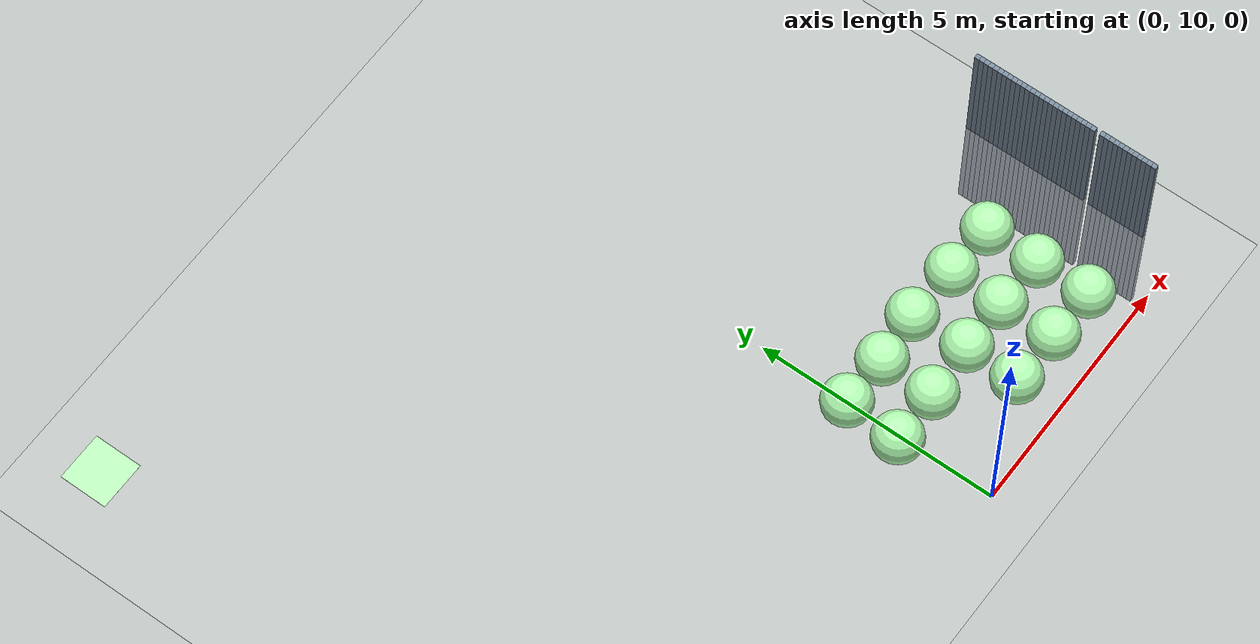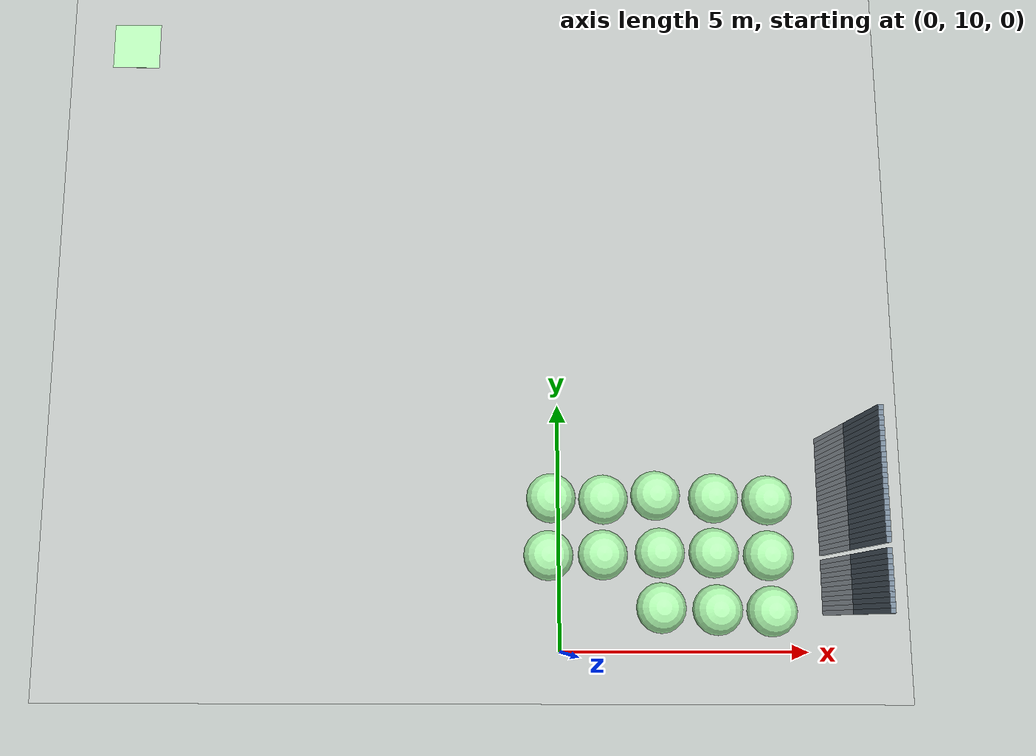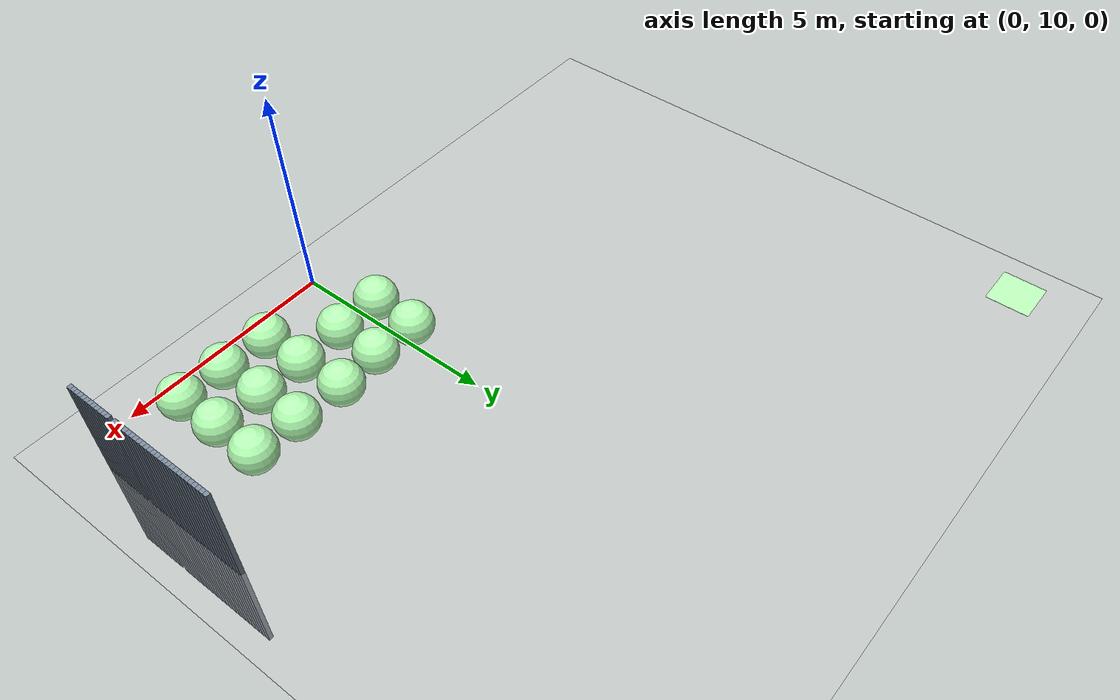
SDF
<sdf version="1.6">
 <world name="default">
  <model name="ground_plane">
   <static>1</static>
   <link name="link">
    <collision name="collision">
     <geometry><plane><normal>0 0 1</normal><size>100 100</size></plane></geometry>
     <surface><friction><ode><mu>100</mu><mu2>50</mu2></ode></friction></surface>
    </collision>
    <visual name="visual">
     <cast_shadows>0</cast_shadows>
     <geometry><plane><normal>0 0 1</normal><size>100 100</size></plane></geometry>
     <material>
      <script><uri>file://media/materials/scripts/gazebo.material</uri><name>Gazebo/Grey</name></script>
     </material>
    </visual>
   </link>
  </model>
  <model name="unit_cylinder_289">
   <static>1</static>
   <pose>6 10.8 0 0 -0 0</pose>
   <link name="link">
    <inertial>
     <mass>1</mass>
     <inertia><ixx>0.145833</ixx><ixy>0</ixy><ixz>0</ixz><iyy>0.145833</iyy><iyz>0</iyz><izz>0.125</izz></inertia>
    </inertial>
    <collision name="collision"><geometry><box><size>0.1 0.1 5</size></box></geometry></collision>
    <visual name="visual">
     <geometry><box><size>0.1 0.1 5</size></box></geometry>
     <material><ambient>0.466667 0.533333 0.6 1</ambient><diffuse>0.466667 0.533333 0.6 1</diffuse></material>
     <material>
      <script><name>Gazebo/Grey</name><uri>file://media/materials/scripts/gazebo.material</uri></script>
     </material>
    </visual>
   </link>
  </model>
  <model name="unit_cylinder_290">
   <static>1</static>
   <pose>6 10.9 0 0 -0 0</pose>
   <link name="link">
    <inertial>
     <mass>1</mass>
     <inertia><ixx>0.145833</ixx><ixy>0</ixy><ixz>0</ixz><iyy>0.145833</iyy><iyz>0</iyz><izz>0.125</izz></inertia>
    </inertial>
    <collision name="collision"><geometry><box><size>0.1 0.1 5</size></box></geometry></collision>
    <visual name="visual">
     <geometry><box><size>0.1 0.1 5</size></box></geometry>
     <material><ambient>0.466667 0.533333 0.6 1</ambient><diffuse>0.466667 0.533333 0.6 1</diffuse></material>
     <material>
      <script><name>Gazebo/Grey</name><uri>file://media/materials/scripts/gazebo.material</uri></script>
     </material>
    </visual>
   </link>
  </model>
  <model name="unit_cylinder_291">
   <static>1</static>
   <pose>6 11 0 0 -0 0</pose>
   <link name="link">
    <inertial>
     <mass>1</mass>
     <inertia><ixx>0.145833</ixx><ixy>0</ixy><ixz>0</ixz><iyy>0.145833</iyy><iyz>0</iyz><izz>0.125</izz></inertia>
    </inertial>
    <collision name="collision"><geometry><box><size>0.1 0.1 5</size></box></geometry></collision>
    <visual name="visual">
     <geometry><box><size>0.1 0.1 5</size></box></geometry>
     <material><ambient>0.466667 0.533333 0.6 1</ambient><diffuse>0.466667 0.533333 0.6 1</diffuse></material>
     <material>
      <script><name>Gazebo/Grey</name><uri>file://media/materials/scripts/gazebo.material</uri></script>
     </material>
    </visual>
   </link>
  </model>
  <model name="unit_cylinder_292">
   <static>1</static>
   <pose>6 11.1 0 0 -0 0</pose>
   <link name="link">
    <inertial>
     <mass>1</mass>
     <inertia><ixx>0.145833</ixx><ixy>0</ixy><ixz>0</ixz><iyy>0.145833</iyy><iyz>0</iyz><izz>0.125</izz></inertia>
    </inertial>
    <collision name="collision"><geometry><box><size>0.1 0.1 5</size></box></geometry></collision>
    <visual name="visual">
     <geometry><box><size>0.1 0.1 5</size></box></geometry>
     <material><ambient>0.466667 0.533333 0.6 1</ambient><diffuse>0.466667 0.533333 0.6 1</diffuse></material>
     <material>
      <script><name>Gazebo/Grey</name><uri>file://media/materials/scripts/gazebo.material</uri></script>
     </material>
    </visual>
   </link>
  </model>
  <model name="unit_cylinder_293">
   <static>1</static>
   <pose>6 11.2 0 0 -0 0</pose>
   <link name="link">
    <inertial>
     <mass>1</mass>
     <inertia><ixx>0.145833</ixx><ixy>0</ixy><ixz>0</ixz><iyy>0.145833</iyy><iyz>0</iyz><izz>0.125</izz></inertia>
    </inertial>
    <collision name="collision"><geometry><box><size>0.1 0.1 5</size></box></geometry></collision>
    <visual name="visual">
     <geometry><box><size>0.1 0.1 5</size></box></geometry>
     <material><ambient>0.466667 0.533333 0.6 1</ambient><diffuse>0.466667 0.533333 0.6 1</diffuse></material>
     <material>
      <script><name>Gazebo/Grey</name><uri>file://media/materials/scripts/gazebo.material</uri></script>
     </material>
    </visual>
   </link>
  </model>
  <model name="unit_cylinder_294">
   <static>1</static>
   <pose>6 11.3 0 0 -0 0</pose>
   <link name="link">
    <inertial>
     <mass>1</mass>
     <inertia><ixx>0.145833</ixx><ixy>0</ixy><ixz>0</ixz><iyy>0.145833</iyy><iyz>0</iyz><izz>0.125</izz></inertia>
    </inertial>
    <collision name="collision"><geometry><box><size>0.1 0.1 5</size></box></geometry></collision>
    <visual name="visual">
     <geometry><box><size>0.1 0.1 5</size></box></geometry>
     <material><ambient>0.466667 0.533333 0.6 1</ambient><diffuse>0.466667 0.533333 0.6 1</diffuse></material>
     <material>
      <script><name>Gazebo/Grey</name><uri>file://media/materials/scripts/gazebo.material</uri></script>
     </material>
    </visual>
   </link>
  </model>
  <model name="unit_cylinder_295">
   <static>1</static>
   <pose>6 11.4 0 0 -0 0</pose>
   <link name="link">
    <inertial>
     <mass>1</mass>
     <inertia><ixx>0.145833</ixx><ixy>0</ixy><ixz>0</ixz><iyy>0.145833</iyy><iyz>0</iyz><izz>0.125</izz></inertia>
    </inertial>
    <collision name="collision"><geometry><box><size>0.1 0.1 5</size></box></geometry></collision>
    <visual name="visual">
     <geometry><box><size>0.1 0.1 5</size></box></geometry>
     <material><ambient>0.466667 0.533333 0.6 1</ambient><diffuse>0.466667 0.533333 0.6 1</diffuse></material>
     <material>
      <script><name>Gazebo/Grey</name><uri>file://media/materials/scripts/gazebo.material</uri></script>
     </material>
    </visual>
   </link>
  </model>
  <model name="unit_cylinder_296">
   <static>1</static>
   <pose>6 11.5 0 0 -0 0</pose>
   <link name="link">
    <inertial>
     <mass>1</mass>
     <inertia><ixx>0.145833</ixx><ixy>0</ixy><ixz>0</ixz><iyy>0.145833</iyy><iyz>0</iyz><izz>0.125</izz></inertia>
    </inertial>
    <collision name="collision"><geometry><box><size>0.1 0.1 5</size></box></geometry></collision>
    <visual name="visual">
     <geometry><box><size>0.1 0.1 5</size></box></geometry>
     <material><ambient>0.466667 0.533333 0.6 1</ambient><diffuse>0.466667 0.533333 0.6 1</diffuse></material>
     <material>
      <script><name>Gazebo/Grey</name><uri>file://media/materials/scripts/gazebo.material</uri></script>
     </material>
    </visual>
   </link>
  </model>
  <model name="unit_cylinder_297">
   <static>1</static>
   <pose>6 11.6 0 0 -0 0</pose>
   <link name="link">
    <inertial>
     <mass>1</mass>
     <inertia><ixx>0.145833</ixx><ixy>0</ixy><ixz>0</ixz><iyy>0.145833</iyy><iyz>0</iyz><izz>0.125</izz></inertia>
    </inertial>
    <collision name="collision"><geometry><box><size>0.1 0.1 5</size></box></geometry></collision>
    <visual name="visual">
     <geometry><box><size>0.1 0.1 5</size></box></geometry>
     <material><ambient>0.466667 0.533333 0.6 1</ambient><diffuse>0.466667 0.533333 0.6 1</diffuse></material>
     <material>
      <script><name>Gazebo/Grey</name><uri>file://media/materials/scripts/gazebo.material</uri></script>
     </material>
    </visual>
   </link>
  </model>
  <model name="unit_cylinder_298">
   <static>1</static>
   <pose>6 11.7 0 0 -0 0</pose>
   <link name="link">
    <inertial>
     <mass>1</mass>
     <inertia><ixx>0.145833</ixx><ixy>0</ixy><ixz>0</ixz><iyy>0.145833</iyy><iyz>0</iyz><izz>0.125</izz></inertia>
    </inertial>
    <collision name="collision"><geometry><box><size>0.1 0.1 5</size></box></geometry></collision>
    <visual name="visual">
     <geometry><box><size>0.1 0.1 5</size></box></geometry>
     <material><ambient>0.466667 0.533333 0.6 1</ambient><diffuse>0.466667 0.533333 0.6 1</diffuse></material>
     <material>
      <script><name>Gazebo/Grey</name><uri>file://media/materials/scripts/gazebo.material</uri></script>
     </material>
    </visual>
   </link>
  </model>
  <model name="unit_cylinder_299">
   <static>1</static>
   <pose>6 11.8 0 0 -0 0</pose>
   <link name="link">
    <inertial>
     <mass>1</mass>
     <inertia><ixx>0.145833</ixx><ixy>0</ixy><ixz>0</ixz><iyy>0.145833</iyy><iyz>0</iyz><izz>0.125</izz></inertia>
    </inertial>
    <collision name="collision"><geometry><box><size>0.1 0.1 5</size></box></geometry></collision>
    <visual name="visual">
     <geometry><box><size>0.1 0.1 5</size></box></geometry>
     <material><ambient>0.466667 0.533333 0.6 1</ambient><diffuse>0.466667 0.533333 0.6 1</diffuse></material>
     <material>
      <script><name>Gazebo/Grey</name><uri>file://media/materials/scripts/gazebo.material</uri></script>
     </material>
    </visual>
   </link>
  </model>
  <model name="unit_cylinder_300">
   <static>1</static>
   <pose>6 11.9 0 0 -0 0</pose>
   <link name="link">
    <inertial>
     <mass>1</mass>
     <inertia><ixx>0.145833</ixx><ixy>0</ixy><ixz>0</ixz><iyy>0.145833</iyy><iyz>0</iyz><izz>0.125</izz></inertia>
    </inertial>
    <collision name="collision"><geometry><box><size>0.1 0.1 5</size></box></geometry></collision>
    <visual name="visual">
     <geometry><box><size>0.1 0.1 5</size></box></geometry>
     <material><ambient>0.466667 0.533333 0.6 1</ambient><diffuse>0.466667 0.533333 0.6 1</diffuse></material>
     <material>
      <script><name>Gazebo/Grey</name><uri>file://media/materials/scripts/gazebo.material</uri></script>
     </material>
    </visual>
   </link>
  </model>
  <model name="unit_cylinder_302">
   <static>1</static>
   <pose>6 12.1 0 0 -0 0</pose>
   <link name="link">
    <inertial>
     <mass>1</mass>
     <inertia><ixx>0.145833</ixx><ixy>0</ixy><ixz>0</ixz><iyy>0.145833</iyy><iyz>0</iyz><izz>0.125</izz></inertia>
    </inertial>
    <collision name="collision"><geometry><box><size>0.1 0.1 5</size></box></geometry></collision>
    <visual name="visual">
     <geometry><box><size>0.1 0.1 5</size></box></geometry>
     <material><ambient>0.466667 0.533333 0.6 1</ambient><diffuse>0.466667 0.533333 0.6 1</diffuse></material>
     <material>
      <script><name>Gazebo/Grey</name><uri>file://media/materials/scripts/gazebo.material</uri></script>
     </material>
    </visual>
   </link>
  </model>
  <model name="unit_cylinder_303">
   <static>1</static>
   <pose>6 12.2 0 0 -0 0</pose>
   <link name="link">
    <inertial>
     <mass>1</mass>
     <inertia><ixx>0.145833</ixx><ixy>0</ixy><ixz>0</ixz><iyy>0.145833</iyy><iyz>0</iyz><izz>0.125</izz></inertia>
    </inertial>
    <collision name="collision"><geometry><box><size>0.1 0.1 5</size></box></geometry></collision>
    <visual name="visual">
     <geometry><box><size>0.1 0.1 5</size></box></geometry>
     <material><ambient>0.466667 0.533333 0.6 1</ambient><diffuse>0.466667 0.533333 0.6 1</diffuse></material>
     <material>
      <script><name>Gazebo/Grey</name><uri>file://media/materials/scripts/gazebo.material</uri></script>
     </material>
    </visual>
   </link>
  </model>
  <model name="unit_cylinder_304">
   <static>1</static>
   <pose>6 12.3 0 0 -0 0</pose>
   <link name="link">
    <inertial>
     <mass>1</mass>
     <inertia><ixx>0.145833</ixx><ixy>0</ixy><ixz>0</ixz><iyy>0.145833</iyy><iyz>0</iyz><izz>0.125</izz></inertia>
    </inertial>
    <collision name="collision"><geometry><box><size>0.1 0.1 5</size></box></geometry></collision>
    <visual name="visual">
     <geometry><box><size>0.1 0.1 5</size></box></geometry>
     <material><ambient>0.466667 0.533333 0.6 1</ambient><diffuse>0.466667 0.533333 0.6 1</diffuse></material>
     <material>
      <script><name>Gazebo/Grey</name><uri>file://media/materials/scripts/gazebo.material</uri></script>
     </material>
    </visual>
   </link>
  </model>
  <model name="unit_cylinder_305">
   <static>1</static>
   <pose>6 12.4 0 0 -0 0</pose>
   <link name="link">
    <inertial>
     <mass>1</mass>
     <inertia><ixx>0.145833</ixx><ixy>0</ixy><ixz>0</ixz><iyy>0.145833</iyy><iyz>0</iyz><izz>0.125</izz></inertia>
    </inertial>
    <collision name="collision"><geometry><box><size>0.1 0.1 5</size></box></geometry></collision>
    <visual name="visual">
     <geometry><box><size>0.1 0.1 5</size></box></geometry>
     <material><ambient>0.466667 0.533333 0.6 1</ambient><diffuse>0.466667 0.533333 0.6 1</diffuse></material>
     <material>
      <script><name>Gazebo/Grey</name><uri>file://media/materials/scripts/gazebo.material</uri></script>
     </material>
    </visual>
   </link>
  </model>
  <model name="unit_cylinder_306">
   <static>1</static>
   <pose>6 12.5 0 0 -0 0</pose>
   <link name="link">
    <inertial>
     <mass>1</mass>
     <inertia><ixx>0.145833</ixx><ixy>0</ixy><ixz>0</ixz><iyy>0.145833</iyy><iyz>0</iyz><izz>0.125</izz></inertia>
    </inertial>
    <collision name="collision"><geometry><box><size>0.1 0.1 5</size></box></geometry></collision>
    <visual name="visual">
     <geometry><box><size>0.1 0.1 5</size></box></geometry>
     <material><ambient>0.466667 0.533333 0.6 1</ambient><diffuse>0.466667 0.533333 0.6 1</diffuse></material>
     <material>
      <script><name>Gazebo/Grey</name><uri>file://media/materials/scripts/gazebo.material</uri></script>
     </material>
    </visual>
   </link>
  </model>
  <model name="unit_cylinder_307">
   <static>1</static>
   <pose>6 12.6 0 0 -0 0</pose>
   <link name="link">
    <inertial>
     <mass>1</mass>
     <inertia><ixx>0.145833</ixx><ixy>0</ixy><ixz>0</ixz><iyy>0.145833</iyy><iyz>0</iyz><izz>0.125</izz></inertia>
    </inertial>
    <collision name="collision"><geometry><box><size>0.1 0.1 5</size></box></geometry></collision>
    <visual name="visual">
     <geometry><box><size>0.1 0.1 5</size></box></geometry>
     <material><ambient>0.466667 0.533333 0.6 1</ambient><diffuse>0.466667 0.533333 0.6 1</diffuse></material>
     <material>
      <script><name>Gazebo/Grey</name><uri>file://media/materials/scripts/gazebo.material</uri></script>
     </material>
    </visual>
   </link>
  </model>
  <model name="unit_cylinder_308">
   <static>1</static>
   <pose>6 12.7 0 0 -0 0</pose>
   <link name="link">
    <inertial>
     <mass>1</mass>
     <inertia><ixx>0.145833</ixx><ixy>0</ixy><ixz>0</ixz><iyy>0.145833</iyy><iyz>0</iyz><izz>0.125</izz></inertia>
    </inertial>
    <collision name="collision"><geometry><box><size>0.1 0.1 5</size></box></geometry></collision>
    <visual name="visual">
     <geometry><box><size>0.1 0.1 5</size></box></geometry>
     <material><ambient>0.466667 0.533333 0.6 1</ambient><diffuse>0.466667 0.533333 0.6 1</diffuse></material>
     <material>
      <script><name>Gazebo/Grey</name><uri>file://media/materials/scripts/gazebo.material</uri></script>
     </material>
    </visual>
   </link>
  </model>
  <model name="unit_cylinder_309">
   <static>1</static>
   <pose>6 12.8 0 0 -0 0</pose>
   <link name="link">
    <inertial>
     <mass>1</mass>
     <inertia><ixx>0.145833</ixx><ixy>0</ixy><ixz>0</ixz><iyy>0.145833</iyy><iyz>0</iyz><izz>0.125</izz></inertia>
    </inertial>
    <collision name="collision"><geometry><box><size>0.1 0.1 5</size></box></geometry></collision>
    <visual name="visual">
     <geometry><box><size>0.1 0.1 5</size></box></geometry>
     <material><ambient>0.466667 0.533333 0.6 1</ambient><diffuse>0.466667 0.533333 0.6 1</diffuse></material>
     <material>
      <script><name>Gazebo/Grey</name><uri>file://media/materials/scripts/gazebo.material</uri></script>
     </material>
    </visual>
   </link>
  </model>
  <model name="unit_cylinder_310">
   <static>1</static>
   <pose>6 12.9 0 0 -0 0</pose>
   <link name="link">
    <inertial>
     <mass>1</mass>
     <inertia><ixx>0.145833</ixx><ixy>0</ixy><ixz>0</ixz><iyy>0.145833</iyy><iyz>0</iyz><izz>0.125</izz></inertia>
    </inertial>
    <collision name="collision"><geometry><box><size>0.1 0.1 5</size></box></geometry></collision>
    <visual name="visual">
     <geometry><box><size>0.1 0.1 5</size></box></geometry>
     <material><ambient>0.466667 0.533333 0.6 1</ambient><diffuse>0.466667 0.533333 0.6 1</diffuse></material>
     <material>
      <script><name>Gazebo/Grey</name><uri>file://media/materials/scripts/gazebo.material</uri></script>
     </material>
    </visual>
   </link>
  </model>
  <model name="unit_cylinder_311">
   <static>1</static>
   <pose>6 13 0 0 -0 0</pose>
   <link name="link">
    <inertial>
     <mass>1</mass>
     <inertia><ixx>0.145833</ixx><ixy>0</ixy><ixz>0</ixz><iyy>0.145833</iyy><iyz>0</iyz><izz>0.125</izz></inertia>
    </inertial>
    <collision name="collision"><geometry><box><size>0.1 0.1 5</size></box></geometry></collision>
    <visual name="visual">
     <geometry><box><size>0.1 0.1 5</size></box></geometry>
     <material><ambient>0.466667 0.533333 0.6 1</ambient><diffuse>0.466667 0.533333 0.6 1</diffuse></material>
     <material>
      <script><name>Gazebo/Grey</name><uri>file://media/materials/scripts/gazebo.material</uri></script>
     </material>
    </visual>
   </link>
  </model>
  <model name="unit_cylinder_312">
   <static>1</static>
   <pose>6 13.1 0 0 -0 0</pose>
   <link name="link">
    <inertial>
     <mass>1</mass>
     <inertia><ixx>0.145833</ixx><ixy>0</ixy><ixz>0</ixz><iyy>0.145833</iyy><iyz>0</iyz><izz>0.125</izz></inertia>
    </inertial>
    <collision name="collision"><geometry><box><size>0.1 0.1 5</size></box></geometry></collision>
    <visual name="visual">
     <geometry><box><size>0.1 0.1 5</size></box></geometry>
     <material><ambient>0.466667 0.533333 0.6 1</ambient><diffuse>0.466667 0.533333 0.6 1</diffuse></material>
     <material>
      <script><name>Gazebo/Grey</name><uri>file://media/materials/scripts/gazebo.material</uri></script>
     </material>
    </visual>
   </link>
  </model>
  <model name="unit_cylinder_313">
   <static>1</static>
   <pose>6 13.2 0 0 -0 0</pose>
   <link name="link">
    <inertial>
     <mass>1</mass>
     <inertia><ixx>0.145833</ixx><ixy>0</ixy><ixz>0</ixz><iyy>0.145833</iyy><iyz>0</iyz><izz>0.125</izz></inertia>
    </inertial>
    <collision name="collision"><geometry><box><size>0.1 0.1 5</size></box></geometry></collision>
    <visual name="visual">
     <geometry><box><size>0.1 0.1 5</size></box></geometry>
     <material><ambient>0.466667 0.533333 0.6 1</ambient><diffuse>0.466667 0.533333 0.6 1</diffuse></material>
     <material>
      <script><name>Gazebo/Grey</name><uri>file://media/materials/scripts/gazebo.material</uri></script>
     </material>
    </visual>
   </link>
  </model>
  <model name="unit_cylinder_314">
   <static>1</static>
   <pose>6 13.3 0 0 -0 0</pose>
   <link name="link">
    <inertial>
     <mass>1</mass>
     <inertia><ixx>0.145833</ixx><ixy>0</ixy><ixz>0</ixz><iyy>0.145833</iyy><iyz>0</iyz><izz>0.125</izz></inertia>
    </inertial>
    <collision name="collision"><geometry><box><size>0.1 0.1 5</size></box></geometry></collision>
    <visual name="visual">
     <geometry><box><size>0.1 0.1 5</size></box></geometry>
     <material><ambient>0.466667 0.533333 0.6 1</ambient><diffuse>0.466667 0.533333 0.6 1</diffuse></material>
     <material>
      <script><name>Gazebo/Grey</name><uri>file://media/materials/scripts/gazebo.material</uri></script>
     </material>
    </visual>
   </link>
  </model>
  <model name="unit_cylinder_315">
   <static>1</static>
   <pose>6 13.4 0 0 -0 0</pose>
   <link name="link">
    <inertial>
     <mass>1</mass>
     <inertia><ixx>0.145833</ixx><ixy>0</ixy><ixz>0</ixz><iyy>0.145833</iyy><iyz>0</iyz><izz>0.125</izz></inertia>
    </inertial>
    <collision name="collision"><geometry><box><size>0.1 0.1 5</size></box></geometry></collision>
    <visual name="visual">
     <geometry><box><size>0.1 0.1 5</size></box></geometry>
     <material><ambient>0.466667 0.533333 0.6 1</ambient><diffuse>0.466667 0.533333 0.6 1</diffuse></material>
     <material>
      <script><name>Gazebo/Grey</name><uri>file://media/materials/scripts/gazebo.material</uri></script>
     </material>
    </visual>
   </link>
  </model>
  <model name="unit_cylinder_316">
   <static>1</static>
   <pose>6 13.5 0 0 -0 0</pose>
   <link name="link">
    <inertial>
     <mass>1</mass>
     <inertia><ixx>0.145833</ixx><ixy>0</ixy><ixz>0</ixz><iyy>0.145833</iyy><iyz>0</iyz><izz>0.125</izz></inertia>
    </inertial>
    <collision name="collision"><geometry><box><size>0.1 0.1 5</size></box></geometry></collision>
    <visual name="visual">
     <geometry><box><size>0.1 0.1 5</size></box></geometry>
     <material><ambient>0.466667 0.533333 0.6 1</ambient><diffuse>0.466667 0.533333 0.6 1</diffuse></material>
     <material>
      <script><name>Gazebo/Grey</name><uri>file://media/materials/scripts/gazebo.material</uri></script>
     </material>
    </visual>
   </link>
  </model>
  <model name="unit_cylinder_317">
   <static>1</static>
   <pose>6 13.6 0 0 -0 0</pose>
   <link name="link">
    <inertial>
     <mass>1</mass>
     <inertia><ixx>0.145833</ixx><ixy>0</ixy><ixz>0</ixz><iyy>0.145833</iyy><iyz>0</iyz><izz>0.125</izz></inertia>
    </inertial>
    <collision name="collision"><geometry><box><size>0.1 0.1 5</size></box></geometry></collision>
    <visual name="visual">
     <geometry><box><size>0.1 0.1 5</size></box></geometry>
     <material><ambient>0.466667 0.533333 0.6 1</ambient><diffuse>0.466667 0.533333 0.6 1</diffuse></material>
     <material>
      <script><name>Gazebo/Grey</name><uri>file://media/materials/scripts/gazebo.material</uri></script>
     </material>
    </visual>
   </link>
  </model>
  <model name="unit_cylinder_318">
   <static>1</static>
   <pose>6 13.7 0 0 -0 0</pose>
   <link name="link">
    <inertial>
     <mass>1</mass>
     <inertia><ixx>0.145833</ixx><ixy>0</ixy><ixz>0</ixz><iyy>0.145833</iyy><iyz>0</iyz><izz>0.125</izz></inertia>
    </inertial>
    <collision name="collision"><geometry><box><size>0.1 0.1 5</size></box></geometry></collision>
    <visual name="visual">
     <geometry><box><size>0.1 0.1 5</size></box></geometry>
     <material><ambient>0.466667 0.533333 0.6 1</ambient><diffuse>0.466667 0.533333 0.6 1</diffuse></material>
     <material>
      <script><name>Gazebo/Grey</name><uri>file://media/materials/scripts/gazebo.material</uri></script>
     </material>
    </visual>
   </link>
  </model>
  <model name="unit_cylinder_319">
   <static>1</static>
   <pose>6 13.8 0 0 -0 0</pose>
   <link name="link">
    <inertial>
     <mass>1</mass>
     <inertia><ixx>0.145833</ixx><ixy>0</ixy><ixz>0</ixz><iyy>0.145833</iyy><iyz>0</iyz><izz>0.125</izz></inertia>
    </inertial>
    <collision name="collision"><geometry><box><size>0.1 0.1 5</size></box></geometry></collision>
    <visual name="visual">
     <geometry><box><size>0.1 0.1 5</size></box></geometry>
     <material><ambient>0.466667 0.533333 0.6 1</ambient><diffuse>0.466667 0.533333 0.6 1</diffuse></material>
     <material>
      <script><name>Gazebo/Grey</name><uri>file://media/materials/scripts/gazebo.material</uri></script>
     </material>
    </visual>
   </link>
  </model>
  <model name="unit_cylinder_320">
   <static>1</static>
   <pose>6 13.9 0 0 -0 0</pose>
   <link name="link">
    <inertial>
     <mass>1</mass>
     <inertia><ixx>0.145833</ixx><ixy>0</ixy><ixz>0</ixz><iyy>0.145833</iyy><iyz>0</iyz><izz>0.125</izz></inertia>
    </inertial>
    <collision name="collision"><geometry><box><size>0.1 0.1 5</size></box></geometry></collision>
    <visual name="visual">
     <geometry><box><size>0.1 0.1 5</size></box></geometry>
     <material><ambient>0.466667 0.533333 0.6 1</ambient><diffuse>0.466667 0.533333 0.6 1</diffuse></material>
     <material>
      <script><name>Gazebo/Grey</name><uri>file://media/materials/scripts/gazebo.material</uri></script>
     </material>
    </visual>
   </link>
  </model>
  <model name="unit_cylinder_321">
   <static>1</static>
   <pose>6 14 0 0 -0 0</pose>
   <link name="link">
    <inertial>
     <mass>1</mass>
     <inertia><ixx>0.145833</ixx><ixy>0</ixy><ixz>0</ixz><iyy>0.145833</iyy><iyz>0</iyz><izz>0.125</izz></inertia>
    </inertial>
    <collision name="collision"><geometry><box><size>0.1 0.1 5</size></box></geometry></collision>
    <visual name="visual">
     <geometry><box><size>0.1 0.1 5</size></box></geometry>
     <material><ambient>0.466667 0.533333 0.6 1</ambient><diffuse>0.466667 0.533333 0.6 1</diffuse></material>
     <material>
      <script><name>Gazebo/Grey</name><uri>file://media/materials/scripts/gazebo.material</uri></script>
     </material>
    </visual>
   </link>
  </model>
  <model name="unit_cylinder_322">
   <static>1</static>
   <pose>6 14.1 0 0 -0 0</pose>
   <link name="link">
    <inertial>
     <mass>1</mass>
     <inertia><ixx>0.145833</ixx><ixy>0</ixy><ixz>0</ixz><iyy>0.145833</iyy><iyz>0</iyz><izz>0.125</izz></inertia>
    </inertial>
    <collision name="collision"><geometry><box><size>0.1 0.1 5</size></box></geometry></collision>
    <visual name="visual">
     <geometry><box><size>0.1 0.1 5</size></box></geometry>
     <material><ambient>0.466667 0.533333 0.6 1</ambient><diffuse>0.466667 0.533333 0.6 1</diffuse></material>
     <material>
      <script><name>Gazebo/Grey</name><uri>file://media/materials/scripts/gazebo.material</uri></script>
     </material>
    </visual>
   </link>
  </model>
  <model name="unit_cylinder_323">
   <static>1</static>
   <pose>6 14.2 0 0 -0 0</pose>
   <link name="link">
    <inertial>
     <mass>1</mass>
     <inertia><ixx>0.145833</ixx><ixy>0</ixy><ixz>0</ixz><iyy>0.145833</iyy><iyz>0</iyz><izz>0.125</izz></inertia>
    </inertial>
    <collision name="collision"><geometry><box><size>0.1 0.1 5</size></box></geometry></collision>
    <visual name="visual">
     <geometry><box><size>0.1 0.1 5</size></box></geometry>
     <material><ambient>0.466667 0.533333 0.6 1</ambient><diffuse>0.466667 0.533333 0.6 1</diffuse></material>
     <material>
      <script><name>Gazebo/Grey</name><uri>file://media/materials/scripts/gazebo.material</uri></script>
     </material>
    </visual>
   </link>
  </model>
  <model name="unit_cylinder_324">
   <static>1</static>
   <pose>6 14.3 0 0 -0 0</pose>
   <link name="link">
    <inertial>
     <mass>1</mass>
     <inertia><ixx>0.145833</ixx><ixy>0</ixy><ixz>0</ixz><iyy>0.145833</iyy><iyz>0</iyz><izz>0.125</izz></inertia>
    </inertial>
    <collision name="collision"><geometry><box><size>0.1 0.1 5</size></box></geometry></collision>
    <visual name="visual">
     <geometry><box><size>0.1 0.1 5</size></box></geometry>
     <material><ambient>0.466667 0.533333 0.6 1</ambient><diffuse>0.466667 0.533333 0.6 1</diffuse></material>
     <material>
      <script><name>Gazebo/Grey</name><uri>file://media/materials/scripts/gazebo.material</uri></script>
     </material>
    </visual>
   </link>
  </model>
  <model name="unit_cylinder_325">
   <static>1</static>
   <pose>6 14.4 0 0 -0 0</pose>
   <link name="link">
    <inertial>
     <mass>1</mass>
     <inertia><ixx>0.145833</ixx><ixy>0</ixy><ixz>0</ixz><iyy>0.145833</iyy><iyz>0</iyz><izz>0.125</izz></inertia>
    </inertial>
    <collision name="collision"><geometry><box><size>0.1 0.1 5</size></box></geometry></collision>
    <visual name="visual">
     <geometry><box><size>0.1 0.1 5</size></box></geometry>
     <material><ambient>0.466667 0.533333 0.6 1</ambient><diffuse>0.466667 0.533333 0.6 1</diffuse></material>
     <material>
      <script><name>Gazebo/Grey</name><uri>file://media/materials/scripts/gazebo.material</uri></script>
     </material>
    </visual>
   </link>
  </model>
  <model name="unit_cylinder_326">
   <static>1</static>
   <pose>6 14.5 0 0 -0 0</pose>
   <link name="link">
    <inertial>
     <mass>1</mass>
     <inertia><ixx>0.145833</ixx><ixy>0</ixy><ixz>0</ixz><iyy>0.145833</iyy><iyz>0</iyz><izz>0.125</izz></inertia>
    </inertial>
    <collision name="collision"><geometry><box><size>0.1 0.1 5</size></box></geometry></collision>
    <visual name="visual">
     <geometry><box><size>0.1 0.1 5</size></box></geometry>
     <material><ambient>0.466667 0.533333 0.6 1</ambient><diffuse>0.466667 0.533333 0.6 1</diffuse></material>
     <material>
      <script><name>Gazebo/Grey</name><uri>file://media/materials/scripts/gazebo.material</uri></script>
     </material>
    </visual>
   </link>
  </model>
  <model name="unit_cylinder_327">
   <static>1</static>
   <pose>6 14.6 0 0 -0 0</pose>
   <link name="link">
    <inertial>
     <mass>1</mass>
     <inertia><ixx>0.145833</ixx><ixy>0</ixy><ixz>0</ixz><iyy>0.145833</iyy><iyz>0</iyz><izz>0.125</izz></inertia>
    </inertial>
    <collision name="collision"><geometry><box><size>0.1 0.1 5</size></box></geometry></collision>
    <visual name="visual">
     <geometry><box><size>0.1 0.1 5</size></box></geometry>
     <material><ambient>0.466667 0.533333 0.6 1</ambient><diffuse>0.466667 0.533333 0.6 1</diffuse></material>
     <material>
      <script><name>Gazebo/Grey</name><uri>file://media/materials/scripts/gazebo.material</uri></script>
     </material>
    </visual>
   </link>
  </model>
  <model name="bouncy_ball">
   <link name="link_0">
    <inertial>
     <mass>0.1</mass>
     <inertia><ixx>1</ixx><ixy>0</ixy><ixz>0</ixz><iyy>1</iyy><iyz>0</iyz><izz>1</izz></inertia>
    </inertial>
    <visual name="visual">
     <geometry><sphere><radius>0.5</radius></sphere></geometry>
     <material>
      <lighting>1</lighting>
      <script><uri>file://media/materials/scripts/gazebo.material</uri><name>Gazebo/Grey</name></script>
      <shader type="pixel"><normal_map>__default__</normal_map></shader>
      <ambient>0 1 0 0</ambient>
      <diffuse>0.7 1 0.7 1</diffuse>
      <specular>0.01 0.01 0.01 1</specular>
      <emissive>0 0 0 1</emissive>
     </material>
    </visual>
    <collision name="collision">
     <geometry><sphere><radius>0.5</radius></sphere></geometry>
     <surface>
      <friction><ode><mu>0</mu><mu2>0</mu2></ode></friction>
      <contact>
       <ode><kp>500000</kp><kd>0</kd><max_vel>1e+26</max_vel><min_depth>0</min_depth></ode>
       <bullet>
        <kp>500000</kp>
        <kd>0</kd>
        <split_impulse>1</split_impulse>
        <split_impulse_penetration_threshold>-0.01</split_impulse_penetration_threshold>
       </bullet>
      </contact>
     </surface>
    </collision>
   </link>
   <static>0</static>
   <pose>-0.179392 13.035 0.499998 0 -0 0</pose>
  </model>
  <model name="bouncy_ball_clone">
   <link name="link_0">
    <inertial>
     <mass>0.1</mass>
     <inertia><ixx>1</ixx><ixy>0</ixy><ixz>0</ixz><iyy>1</iyy><iyz>0</iyz><izz>1</izz></inertia>
    </inertial>
    <visual name="visual">
     <geometry><sphere><radius>0.5</radius></sphere></geometry>
     <material>
      <lighting>1</lighting>
      <script><uri>file://media/materials/scripts/gazebo.material</uri><name>Gazebo/Grey</name></script>
      <shader type="pixel"><normal_map>__default__</normal_map></shader>
      <ambient>0 1 0 0</ambient>
      <diffuse>0.7 1 0.7 1</diffuse>
      <specular>0.01 0.01 0.01 1</specular>
      <emissive>0 0 0 1</emissive>
     </material>
    </visual>
    <collision name="collision">
     <geometry><sphere><radius>0.5</radius></sphere></geometry>
     <surface>
      <friction><ode><mu>0</mu><mu2>0</mu2></ode></friction>
      <contact>
       <ode><kp>500000</kp><kd>0</kd><max_vel>1e+26</max_vel><min_depth>0</min_depth></ode>
       <bullet>
        <kp>500000</kp>
        <kd>0</kd>
        <split_impulse>1</split_impulse>
        <split_impulse_penetration_threshold>-0.01</split_impulse_penetration_threshold>
       </bullet>
      </contact>
     </surface>
    </collision>
   </link>
   <static>0</static>
   <pose>0.873613 13.0111 0.499998 0 -0 0</pose>
  </model>
  <model name="bouncy_ball_clone_0">
   <link name="link_0">
    <inertial>
     <mass>0.1</mass>
     <inertia><ixx>1</ixx><ixy>0</ixy><ixz>0</ixz><iyy>1</iyy><iyz>0</iyz><izz>1</izz></inertia>
    </inertial>
    <visual name="visual">
     <geometry><sphere><radius>0.5</radius></sphere></geometry>
     <material>
      <lighting>1</lighting>
      <script><uri>file://media/materials/scripts/gazebo.material</uri><name>Gazebo/Grey</name></script>
      <shader type="pixel"><normal_map>__default__</normal_map></shader>
      <ambient>0 1 0 0</ambient>
      <diffuse>0.7 1 0.7 1</diffuse>
      <specular>0.01 0.01 0.01 1</specular>
      <emissive>0 0 0 1</emissive>
     </material>
    </visual>
    <collision name="collision">
     <geometry><sphere><radius>0.5</radius></sphere></geometry>
     <surface>
      <friction><ode><mu>0</mu><mu2>0</mu2></ode></friction>
      <contact>
       <ode><kp>500000</kp><kd>0</kd><max_vel>1e+26</max_vel><min_depth>0</min_depth></ode>
       <bullet>
        <kp>500000</kp>
        <kd>0</kd>
        <split_impulse>1</split_impulse>
        <split_impulse_penetration_threshold>-0.01</split_impulse_penetration_threshold>
       </bullet>
      </contact>
     </surface>
    </collision>
   </link>
   <static>0</static>
   <pose>1.92758 13.09 0.499998 0 -0 0</pose>
  </model>
  <model name="bouncy_ball_clone_1">
   <link name="link_0">
    <inertial>
     <mass>0.1</mass>
     <inertia><ixx>1</ixx><ixy>0</ixy><ixz>0</ixz><iyy>1</iyy><iyz>0</iyz><izz>1</izz></inertia>
    </inertial>
    <visual name="visual">
     <geometry><sphere><radius>0.5</radius></sphere></geometry>
     <material>
      <lighting>1</lighting>
      <script><uri>file://media/materials/scripts/gazebo.material</uri><name>Gazebo/Grey</name></script>
      <shader type="pixel"><normal_map>__default__</normal_map></shader>
      <ambient>0 1 0 0</ambient>
      <diffuse>0.7 1 0.7 1</diffuse>
      <specular>0.01 0.01 0.01 1</specular>
      <emissive>0 0 0 1</emissive>
     </material>
    </visual>
    <collision name="collision">
     <geometry><sphere><radius>0.5</radius></sphere></geometry>
     <surface>
      <friction><ode><mu>0</mu><mu2>0</mu2></ode></friction>
      <contact>
       <ode><kp>500000</kp><kd>0</kd><max_vel>1e+26</max_vel><min_depth>0</min_depth></ode>
       <bullet>
        <kp>500000</kp>
        <kd>0</kd>
        <split_impulse>1</split_impulse>
        <split_impulse_penetration_threshold>-0.01</split_impulse_penetration_threshold>
       </bullet>
      </contact>
     </surface>
    </collision>
   </link>
   <static>0</static>
   <pose>3.09577 13.039 0.499998 0 -0 0</pose>
  </model>
  <model name="bouncy_ball_clone_2">
   <link name="link_0">
    <inertial>
     <mass>0.1</mass>
     <inertia><ixx>1</ixx><ixy>0</ixy><ixz>0</ixz><iyy>1</iyy><iyz>0</iyz><izz>1</izz></inertia>
    </inertial>
    <visual name="visual">
     <geometry><sphere><radius>0.5</radius></sphere></geometry>
     <material>
      <lighting>1</lighting>
      <script><uri>file://media/materials/scripts/gazebo.material</uri><name>Gazebo/Grey</name></script>
      <shader type="pixel"><normal_map>__default__</normal_map></shader>
      <ambient>0 1 0 0</ambient>
      <diffuse>0.7 1 0.7 1</diffuse>
      <specular>0.01 0.01 0.01 1</specular>
      <emissive>0 0 0 1</emissive>
     </material>
    </visual>
    <collision name="collision">
     <geometry><sphere><radius>0.5</radius></sphere></geometry>
     <surface>
      <friction><ode><mu>0</mu><mu2>0</mu2></ode></friction>
      <contact>
       <ode><kp>500000</kp><kd>0</kd><max_vel>1e+26</max_vel><min_depth>0</min_depth></ode>
       <bullet>
        <kp>500000</kp>
        <kd>0</kd>
        <split_impulse>1</split_impulse>
        <split_impulse_penetration_threshold>-0.01</split_impulse_penetration_threshold>
       </bullet>
      </contact>
     </surface>
    </collision>
   </link>
   <static>0</static>
   <pose>4.17438 13.002 0.499998 0 -0 0</pose>
  </model>
  <model name="bouncy_ball_clone_3">
   <link name="link_0">
    <inertial>
     <mass>0.1</mass>
     <inertia><ixx>1</ixx><ixy>0</ixy><ixz>0</ixz><iyy>1</iyy><iyz>0</iyz><izz>1</izz></inertia>
    </inertial>
    <visual name="visual">
     <geometry><sphere><radius>0.5</radius></sphere></geometry>
     <material>
      <lighting>1</lighting>
      <script><uri>file://media/materials/scripts/gazebo.material</uri><name>Gazebo/Grey</name></script>
      <shader type="pixel"><normal_map>__default__</normal_map></shader>
      <ambient>0 1 0 0</ambient>
      <diffuse>0.7 1 0.7 1</diffuse>
      <specular>0.01 0.01 0.01 1</specular>
      <emissive>0 0 0 1</emissive>
     </material>
    </visual>
    <collision name="collision">
     <geometry><sphere><radius>0.5</radius></sphere></geometry>
     <surface>
      <friction><ode><mu>0</mu><mu2>0</mu2></ode></friction>
      <contact>
       <ode><kp>500000</kp><kd>0</kd><max_vel>1e+26</max_vel><min_depth>0</min_depth></ode>
       <bullet>
        <kp>500000</kp>
        <kd>0</kd>
        <split_impulse>1</split_impulse>
        <split_impulse_penetration_threshold>-0.01</split_impulse_penetration_threshold>
       </bullet>
      </contact>
     </surface>
    </collision>
   </link>
   <static>0</static>
   <pose>-0.2424 11.8923 0.499998 0 -0 0</pose>
  </model>
  <model name="bouncy_ball_clone_4">
   <link name="link_0">
    <inertial>
     <mass>0.1</mass>
     <inertia><ixx>1</ixx><ixy>0</ixy><ixz>0</ixz><iyy>1</iyy><iyz>0</iyz><izz>1</izz></inertia>
    </inertial>
    <visual name="visual">
     <geometry><sphere><radius>0.5</radius></sphere></geometry>
     <material>
      <lighting>1</lighting>
      <script><uri>file://media/materials/scripts/gazebo.material</uri><name>Gazebo/Grey</name></script>
      <shader type="pixel"><normal_map>__default__</normal_map></shader>
      <ambient>0 1 0 0</ambient>
      <diffuse>0.7 1 0.7 1</diffuse>
      <specular>0.01 0.01 0.01 1</specular>
      <emissive>0 0 0 1</emissive>
     </material>
    </visual>
    <collision name="collision">
     <geometry><sphere><radius>0.5</radius></sphere></geometry>
     <surface>
      <friction><ode><mu>0</mu><mu2>0</mu2></ode></friction>
      <contact>
       <ode><kp>500000</kp><kd>0</kd><max_vel>1e+26</max_vel><min_depth>0</min_depth></ode>
       <bullet>
        <kp>500000</kp>
        <kd>0</kd>
        <split_impulse>1</split_impulse>
        <split_impulse_penetration_threshold>-0.01</split_impulse_penetration_threshold>
       </bullet>
      </contact>
     </surface>
    </collision>
   </link>
   <static>0</static>
   <pose>0.849448 11.9065 0.499998 0 -0 0</pose>
  </model>
  <model name="bouncy_ball_clone_5">
   <link name="link_0">
    <inertial>
     <mass>0.1</mass>
     <inertia><ixx>1</ixx><ixy>0</ixy><ixz>0</ixz><iyy>1</iyy><iyz>0</iyz><izz>1</izz></inertia>
    </inertial>
    <visual name="visual">
     <geometry><sphere><radius>0.5</radius></sphere></geometry>
     <material>
      <lighting>1</lighting>
      <script><uri>file://media/materials/scripts/gazebo.material</uri><name>Gazebo/Grey</name></script>
      <shader type="pixel"><normal_map>__default__</normal_map></shader>
      <ambient>0 1 0 0</ambient>
      <diffuse>0.7 1 0.7 1</diffuse>
      <specular>0.01 0.01 0.01 1</specular>
      <emissive>0 0 0 1</emissive>
     </material>
    </visual>
    <collision name="collision">
     <geometry><sphere><radius>0.5</radius></sphere></geometry>
     <surface>
      <friction><ode><mu>0</mu><mu2>0</mu2></ode></friction>
      <contact>
       <ode><kp>500000</kp><kd>0</kd><max_vel>1e+26</max_vel><min_depth>0</min_depth></ode>
       <bullet>
        <kp>500000</kp>
        <kd>0</kd>
        <split_impulse>1</split_impulse>
        <split_impulse_penetration_threshold>-0.01</split_impulse_penetration_threshold>
       </bullet>
      </contact>
     </surface>
    </collision>
   </link>
   <static>0</static>
   <pose>1.99283 11.9461 0.499998 0 -0 0</pose>
  </model>
  <model name="bouncy_ball_clone_6">
   <link name="link_0">
    <inertial>
     <mass>0.1</mass>
     <inertia><ixx>1</ixx><ixy>0</ixy><ixz>0</ixz><iyy>1</iyy><iyz>0</iyz><izz>1</izz></inertia>
    </inertial>
    <visual name="visual">
     <geometry><sphere><radius>0.5</radius></sphere></geometry>
     <material>
      <lighting>1</lighting>
      <script><uri>file://media/materials/scripts/gazebo.material</uri><name>Gazebo/Grey</name></script>
      <shader type="pixel"><normal_map>__default__</normal_map></shader>
      <ambient>0 1 0 0</ambient>
      <diffuse>0.7 1 0.7 1</diffuse>
      <specular>0.01 0.01 0.01 1</specular>
      <emissive>0 0 0 1</emissive>
     </material>
    </visual>
    <collision name="collision">
     <geometry><sphere><radius>0.5</radius></sphere></geometry>
     <surface>
      <friction><ode><mu>0</mu><mu2>0</mu2></ode></friction>
      <contact>
       <ode><kp>500000</kp><kd>0</kd><max_vel>1e+26</max_vel><min_depth>0</min_depth></ode>
       <bullet>
        <kp>500000</kp>
        <kd>0</kd>
        <split_impulse>1</split_impulse>
        <split_impulse_penetration_threshold>-0.01</split_impulse_penetration_threshold>
       </bullet>
      </contact>
     </surface>
    </collision>
   </link>
   <static>0</static>
   <pose>3.07164 11.9475 0.499998 0 -0 0</pose>
  </model>
  <model name="bouncy_ball_clone_7">
   <link name="link_0">
    <inertial>
     <mass>0.1</mass>
     <inertia><ixx>1</ixx><ixy>0</ixy><ixz>0</ixz><iyy>1</iyy><iyz>0</iyz><izz>1</izz></inertia>
    </inertial>
    <visual name="visual">
     <geometry><sphere><radius>0.5</radius></sphere></geometry>
     <material>
      <lighting>1</lighting>
      <script><uri>file://media/materials/scripts/gazebo.material</uri><name>Gazebo/Grey</name></script>
      <shader type="pixel"><normal_map>__default__</normal_map></shader>
      <ambient>0 1 0 0</ambient>
      <diffuse>0.7 1 0.7 1</diffuse>
      <specular>0.01 0.01 0.01 1</specular>
      <emissive>0 0 0 1</emissive>
     </material>
    </visual>
    <collision name="collision">
     <geometry><sphere><radius>0.5</radius></sphere></geometry>
     <surface>
      <friction><ode><mu>0</mu><mu2>0</mu2></ode></friction>
      <contact>
       <ode><kp>500000</kp><kd>0</kd><max_vel>1e+26</max_vel><min_depth>0</min_depth></ode>
       <bullet>
        <kp>500000</kp>
        <kd>0</kd>
        <split_impulse>1</split_impulse>
        <split_impulse_penetration_threshold>-0.01</split_impulse_penetration_threshold>
       </bullet>
      </contact>
     </surface>
    </collision>
   </link>
   <static>0</static>
   <pose>4.16274 11.8975 0.499998 0 -0 0</pose>
  </model>
  <model name="bouncy_ball_clone_10">
   <link name="link_0">
    <inertial>
     <mass>0.1</mass>
     <inertia><ixx>1</ixx><ixy>0</ixy><ixz>0</ixz><iyy>1</iyy><iyz>0</iyz><izz>1</izz></inertia>
    </inertial>
    <visual name="visual">
     <geometry><sphere><radius>0.5</radius></sphere></geometry>
     <material>
      <lighting>1</lighting>
      <script><uri>file://media/materials/scripts/gazebo.material</uri><name>Gazebo/Grey</name></script>
      <shader type="pixel"><normal_map>__default__</normal_map></shader>
      <ambient>0 1 0 0</ambient>
      <diffuse>0.7 1 0.7 1</diffuse>
      <specular>0.01 0.01 0.01 1</specular>
      <emissive>0 0 0 1</emissive>
     </material>
    </visual>
    <collision name="collision">
     <geometry><sphere><radius>0.5</radius></sphere></geometry>
     <surface>
      <friction><ode><mu>0</mu><mu2>0</mu2></ode></friction>
      <contact>
       <ode><kp>500000</kp><kd>0</kd><max_vel>1e+26</max_vel><min_depth>0</min_depth></ode>
       <bullet>
        <kp>500000</kp>
        <kd>0</kd>
        <split_impulse>1</split_impulse>
        <split_impulse_penetration_threshold>-0.01</split_impulse_penetration_threshold>
       </bullet>
      </contact>
     </surface>
    </collision>
   </link>
   <static>0</static>
   <pose>1.99461 10.867 0.499998 0 -0 0</pose>
  </model>
  <model name="bouncy_ball_clone_11">
   <link name="link_0">
    <inertial>
     <mass>0.1</mass>
     <inertia><ixx>1</ixx><ixy>0</ixy><ixz>0</ixz><iyy>1</iyy><iyz>0</iyz><izz>1</izz></inertia>
    </inertial>
    <visual name="visual">
     <geometry><sphere><radius>0.5</radius></sphere></geometry>
     <material>
      <lighting>1</lighting>
      <script><uri>file://media/materials/scripts/gazebo.material</uri><name>Gazebo/Grey</name></script>
      <shader type="pixel"><normal_map>__default__</normal_map></shader>
      <ambient>0 1 0 0</ambient>
      <diffuse>0.7 1 0.7 1</diffuse>
      <specular>0.01 0.01 0.01 1</specular>
      <emissive>0 0 0 1</emissive>
     </material>
    </visual>
    <collision name="collision">
     <geometry><sphere><radius>0.5</radius></sphere></geometry>
     <surface>
      <friction><ode><mu>0</mu><mu2>0</mu2></ode></friction>
      <contact>
       <ode><kp>500000</kp><kd>0</kd><max_vel>1e+26</max_vel><min_depth>0</min_depth></ode>
       <bullet>
        <kp>500000</kp>
        <kd>0</kd>
        <split_impulse>1</split_impulse>
        <split_impulse_penetration_threshold>-0.01</split_impulse_penetration_threshold>
       </bullet>
      </contact>
     </surface>
    </collision>
   </link>
   <static>0</static>
   <pose>3.11147 10.8297 0.499998 0 -0 0</pose>
  </model>
  <model name="bouncy_ball_clone_12">
   <link name="link_0">
    <inertial>
     <mass>0.1</mass>
     <inertia><ixx>1</ixx><ixy>0</ixy><ixz>0</ixz><iyy>1</iyy><iyz>0</iyz><izz>1</izz></inertia>
    </inertial>
    <visual name="visual">
     <geometry><sphere><radius>0.5</radius></sphere></geometry>
     <material>
      <lighting>1</lighting>
      <script><uri>file://media/materials/scripts/gazebo.material</uri><name>Gazebo/Grey</name></script>
      <shader type="pixel"><normal_map>__default__</normal_map></shader>
      <ambient>0 1 0 0</ambient>
      <diffuse>0.7 1 0.7 1</diffuse>
      <specular>0.01 0.01 0.01 1</specular>
      <emissive>0 0 0 1</emissive>
     </material>
    </visual>
    <collision name="collision">
     <geometry><sphere><radius>0.5</radius></sphere></geometry>
     <surface>
      <friction><ode><mu>0</mu><mu2>0</mu2></ode></friction>
      <contact>
       <ode><kp>500000</kp><kd>0</kd><max_vel>1e+26</max_vel><min_depth>0</min_depth></ode>
       <bullet>
        <kp>500000</kp>
        <kd>0</kd>
        <split_impulse>1</split_impulse>
        <split_impulse_penetration_threshold>-0.01</split_impulse_penetration_threshold>
       </bullet>
      </contact>
     </surface>
    </collision>
   </link>
   <static>0</static>
   <pose>4.19003 10.8054 0.499998 0 -0 0</pose>
  </model>
  <model name="goal_box">
   <link name="link_0">
    <inertial>
     <mass>100</mass>
     <inertia><ixx>1</ixx><ixy>0</ixy><ixz>0</ixz><iyy>1</iyy><iyz>0</iyz><izz>1</izz></inertia>
    </inertial>
    <visual name="visual">
     <geometry><box><size>1 1 0.001</size></box></geometry>
     <material>
      <lighting>1</lighting>
      <script><uri>file://media/materials/scripts/gazebo.material</uri><name>Gazebo/Grey</name></script>
      <shader type="pixel"><normal_map>__default__</normal_map></shader>
      <ambient>1 0 0 0</ambient>
      <diffuse>0.7 1 0.7 1</diffuse>
      <specular>0.01 0.01 0.01 1</specular>
      <emissive>0 0 0 1</emissive>
     </material>
    </visual>
    <collision name="collision">
     <geometry><box><size>1 1 0.001</size></box></geometry>
     <surface>
      <friction><ode><mu>0</mu><mu2>0</mu2></ode></friction>
      <contact>
       <ode><kp>500000</kp><kd>1</kd><max_vel>1e+26</max_vel><min_depth>0</min_depth></ode>
       <bullet>
        <kp>500000</kp>
        <kd>0</kd>
        <split_impulse>1</split_impulse>
        <split_impulse_penetration_threshold>-0.01</split_impulse_penetration_threshold>
       </bullet>
      </contact>
     </surface>
    </collision>
   </link>
   <static>0</static>
   <pose>-9.10412 22.8676 0.4 0 -0 0</pose>
  </model>
 </world>
</sdf>
